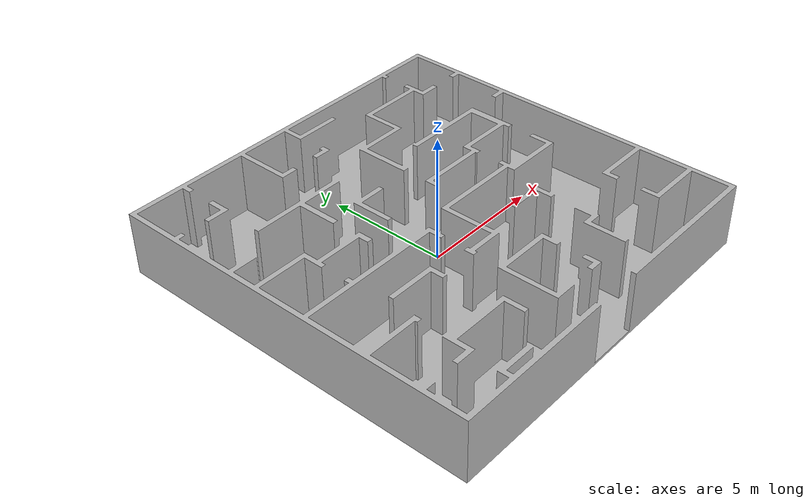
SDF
<?xml version="1.0" ?>
<sdf version="1.5">
  <model name="arina_nidar">
    <static>true</static>
    <link name="link">
      <pose>-7.5 -7.5 0 0 0 0</pose>
      <collision name="collision">
        <geometry>
          <mesh>
            <uri>model://arina_nidar/meshes/arina_nidar.stl</uri>
            <scale>0.001 0.001 0.001</scale>
          </mesh>
        </geometry>
        <surface>
          <friction>
            <ode>
              <mu>1.0</mu>
              <mu2>1.0</mu2>
            </ode>
          </friction>
        </surface>
      </collision>
      <visual name="visual">
        <cast_shadows>false</cast_shadows>
        <geometry>
          <mesh>
            <uri>model://arina_nidar/meshes/arina_nidar.stl</uri>
            <scale>0.001 0.001 0.001</scale>
          </mesh>
        </geometry>
      </visual>
    </link>
  </model>
</sdf>
